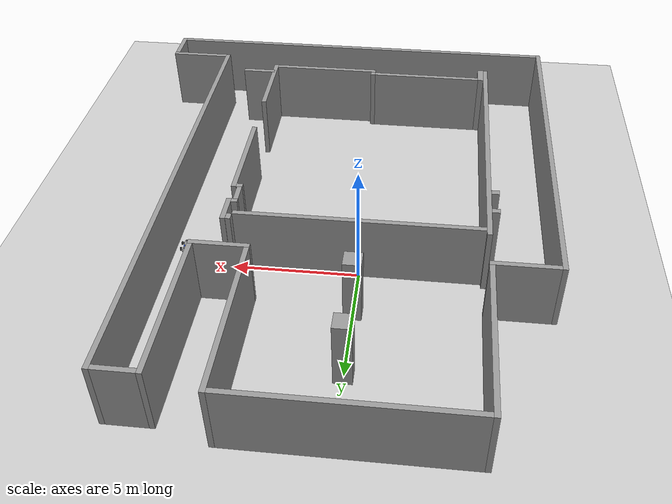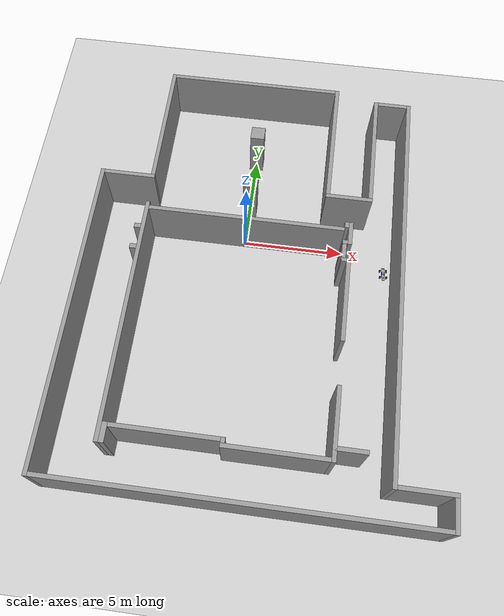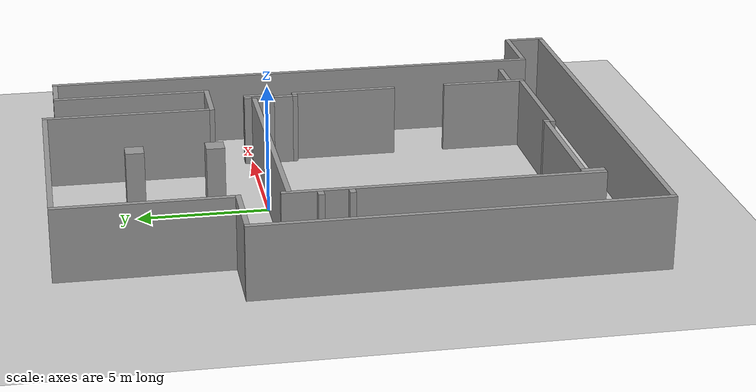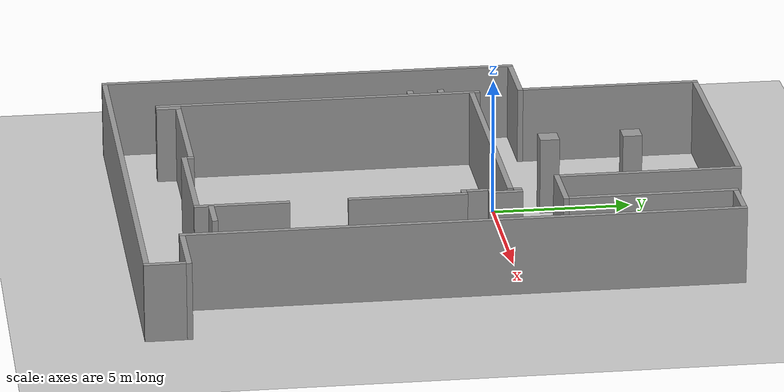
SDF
<sdf version="1.4">
 <world name="default">
  <model name="ground_plane">
   <static>1</static>
   <link name="link">
    <collision name="collision">
     <geometry><plane><normal>0 0 1</normal><size>100 100</size></plane></geometry>
     <surface><friction><ode><mu>100</mu><mu2>50</mu2></ode></friction></surface>
    </collision>
    <visual name="visual">
     <cast_shadows>0</cast_shadows>
     <geometry><plane><normal>0 0 1</normal><size>100 100</size></plane></geometry>
     <material>
      <script><uri>file://media/materials/scripts/gazebo.material</uri><name>Gazebo/Grey</name></script>
     </material>
    </visual>
    <velocity_decay><linear>0</linear><angular>0</angular></velocity_decay>
   </link>
  </model>
  <light name="sun" type="directional">
   <pose>0 0 10 0 -0 0</pose>
   <diffuse>0.8 0.8 0.8 1</diffuse>
   <specular>0.2 0.2 0.2 1</specular>
   <attenuation>
    <range>1000</range>
    <constant>0.9</constant>
    <linear>0.01</linear>
    <quadratic>0.001</quadratic>
   </attenuation>
   <direction>-0.5 0.1 -0.9</direction>
  </light>
  <model name="3rdFloor">
   <static>1</static>
   <link name="link1">
    <pose>0 -0.1 1.4 0 -0 0</pose>
    <collision name="collision"><geometry><box><size>9.65 0.2 2.8</size></box></geometry></collision>
    <visual name="visual">
     <cast_shadows>0</cast_shadows>
     <geometry><box><size>9.65 0.2 2.8</size></box></geometry>
     <material>
      <script>
       <uri>model://grey_wall/materials/scripts</uri>
       <uri>model://grey_wall/materials/textures</uri>
       <name>vrc/grey_wall</name>
      </script>
     </material>
    </visual>
    <velocity_decay><linear>0</linear><angular>0</angular></velocity_decay>
   </link>
   <link name="link2">
    <pose>4.923 0.15 1.4 0 -0 1.5708</pose>
    <collision name="collision"><geometry><box><size>0.3 0.2 2.8</size></box></geometry></collision>
    <visual name="visual">
     <cast_shadows>0</cast_shadows>
     <geometry><box><size>0.3 0.2 2.8</size></box></geometry>
     <material>
      <script>
       <uri>model://grey_wall/materials/scripts</uri>
       <uri>model://grey_wall/materials/textures</uri>
       <name>vrc/grey_wall</name>
      </script>
     </material>
    </visual>
    <velocity_decay><linear>0</linear><angular>0</angular></velocity_decay>
   </link>
   <link name="link4">
    <pose>5.125 -0.3 1.4 0 -0 1.5708</pose>
    <collision name="collision"><geometry><box><size>1.2 0.2 2.8</size></box></geometry></collision>
    <visual name="visual">
     <cast_shadows>0</cast_shadows>
     <geometry><box><size>1.2 0.2 2.8</size></box></geometry>
     <material>
      <script>
       <uri>model://grey_wall/materials/scripts</uri>
       <uri>model://grey_wall/materials/textures</uri>
       <name>vrc/grey_wall</name>
      </script>
     </material>
    </visual>
    <velocity_decay><linear>0</linear><angular>0</angular></velocity_decay>
   </link>
   <link name="link5">
    <pose>4.9 -0.8 1.4 0 -0 0</pose>
    <collision name="collision"><geometry><box><size>0.25 0.2 2.8</size></box></geometry></collision>
    <visual name="visual">
     <cast_shadows>0</cast_shadows>
     <geometry><box><size>0.25 0.2 2.8</size></box></geometry>
     <material>
      <script>
       <uri>model://grey_wall/materials/scripts</uri>
       <uri>model://grey_wall/materials/textures</uri>
       <name>vrc/grey_wall</name>
      </script>
     </material>
    </visual>
    <velocity_decay><linear>0</linear><angular>0</angular></velocity_decay>
   </link>
   <link name="link6">
    <pose>4.875 -1.275 1.4 0 -0 1.5708</pose>
    <collision name="collision"><geometry><box><size>0.75 0.2 2.8</size></box></geometry></collision>
    <visual name="visual">
     <cast_shadows>0</cast_shadows>
     <geometry><box><size>0.75 0.2 2.8</size></box></geometry>
     <material>
      <script>
       <uri>model://grey_wall/materials/scripts</uri>
       <uri>model://grey_wall/materials/textures</uri>
       <name>vrc/grey_wall</name>
      </script>
     </material>
    </visual>
    <velocity_decay><linear>0</linear><angular>0</angular></velocity_decay>
   </link>
   <link name="link7">
    <pose>4.9 -1.75 1.4 0 -0 0</pose>
    <collision name="collision"><geometry><box><size>0.25 0.2 2.8</size></box></geometry></collision>
    <visual name="visual">
     <cast_shadows>0</cast_shadows>
     <geometry><box><size>0.25 0.2 2.8</size></box></geometry>
     <material>
      <script>
       <uri>model://grey_wall/materials/scripts</uri>
       <uri>model://grey_wall/materials/textures</uri>
       <name>vrc/grey_wall</name>
      </script>
     </material>
    </visual>
    <velocity_decay><linear>0</linear><angular>0</angular></velocity_decay>
   </link>
   <link name="link8">
    <pose>5.125 -3.75 1.4 0 -0 1.5708</pose>
    <collision name="collision"><geometry><box><size>4.2 0.2 2.8</size></box></geometry></collision>
    <visual name="visual">
     <cast_shadows>0</cast_shadows>
     <geometry><box><size>4.2 0.2 2.8</size></box></geometry>
     <material>
      <script>
       <uri>model://grey_wall/materials/scripts</uri>
       <uri>model://grey_wall/materials/textures</uri>
       <name>vrc/grey_wall</name>
      </script>
     </material>
    </visual>
    <velocity_decay><linear>0</linear><angular>0</angular></velocity_decay>
   </link>
   <link name="link9">
    <pose>5.125 -9.575 1.4 0 -0 1.5708</pose>
    <collision name="collision"><geometry><box><size>3.35 0.2 2.8</size></box></geometry></collision>
    <visual name="visual">
     <cast_shadows>0</cast_shadows>
     <geometry><box><size>3.35 0.2 2.8</size></box></geometry>
     <material>
      <script>
       <uri>model://grey_wall/materials/scripts</uri>
       <uri>model://grey_wall/materials/textures</uri>
       <name>vrc/grey_wall</name>
      </script>
     </material>
    </visual>
    <velocity_decay><linear>0</linear><angular>0</angular></velocity_decay>
   </link>
   <link name="link9.1">
    <pose>5.85 -10.65 1.4 0 -0 0</pose>
    <collision name="collision"><geometry><box><size>1.25 0.2 2.8</size></box></geometry></collision>
    <visual name="visual">
     <cast_shadows>0</cast_shadows>
     <geometry><box><size>1.45 0.2 2.8</size></box></geometry>
     <material>
      <script>
       <uri>model://grey_wall/materials/scripts</uri>
       <uri>model://grey_wall/materials/textures</uri>
       <name>vrc/grey_wall</name>
      </script>
     </material>
    </visual>
    <velocity_decay><linear>0</linear><angular>0</angular></velocity_decay>
   </link>
   <link name="link10">
    <pose>2.675 -11.15 1.4 0 -0 0</pose>
    <collision name="collision"><geometry><box><size>4.7 0.2 2.8</size></box></geometry></collision>
    <visual name="visual">
     <cast_shadows>0</cast_shadows>
     <geometry><box><size>4.7 0.2 2.8</size></box></geometry>
     <material>
      <script>
       <uri>model://grey_wall/materials/scripts</uri>
       <uri>model://grey_wall/materials/textures</uri>
       <name>vrc/grey_wall</name>
      </script>
     </material>
    </visual>
    <velocity_decay><linear>0</linear><angular>0</angular></velocity_decay>
   </link>
   <link name="link11">
    <pose>0.425 -10.925 1.4 0 -0 1.5708</pose>
    <collision name="collision"><geometry><box><size>0.25 0.2 2.8</size></box></geometry></collision>
    <visual name="visual">
     <cast_shadows>0</cast_shadows>
     <geometry><box><size>0.25 0.2 2.8</size></box></geometry>
     <material>
      <script>
       <uri>model://grey_wall/materials/scripts</uri>
       <uri>model://grey_wall/materials/textures</uri>
       <name>vrc/grey_wall</name>
      </script>
     </material>
    </visual>
    <velocity_decay><linear>0</linear><angular>0</angular></velocity_decay>
   </link>
   <link name="link12">
    <pose>-2.1 -10.9 1.4 0 -0 0</pose>
    <collision name="collision"><geometry><box><size>4.85 0.2 2.8</size></box></geometry></collision>
    <visual name="visual">
     <cast_shadows>0</cast_shadows>
     <geometry><box><size>4.85 0.2 2.8</size></box></geometry>
     <material>
      <script>
       <uri>model://grey_wall/materials/scripts</uri>
       <uri>model://grey_wall/materials/textures</uri>
       <name>vrc/grey_wall</name>
      </script>
     </material>
    </visual>
    <velocity_decay><linear>0</linear><angular>0</angular></velocity_decay>
   </link>
   <link name="link13">
    <pose>-4.65 -11.25 1.4 0 -0 1.5708</pose>
    <collision name="collision"><geometry><box><size>0.9 0.25 2.8</size></box></geometry></collision>
    <visual name="visual">
     <cast_shadows>0</cast_shadows>
     <geometry><box><size>0.9 0.25 2.8</size></box></geometry>
     <material>
      <script>
       <uri>model://grey_wall/materials/scripts</uri>
       <uri>model://grey_wall/materials/textures</uri>
       <name>vrc/grey_wall</name>
      </script>
     </material>
    </visual>
    <velocity_decay><linear>0</linear><angular>0</angular></velocity_decay>
   </link>
   <link name="link14">
    <pose>-4.875 -5.75 1.4 0 -0 1.5708</pose>
    <collision name="collision"><geometry><box><size>11.9 0.2 2.8</size></box></geometry></collision>
    <visual name="visual">
     <cast_shadows>0</cast_shadows>
     <geometry><box><size>11.9 0.2 2.8</size></box></geometry>
     <material>
      <script>
       <uri>model://grey_wall/materials/scripts</uri>
       <uri>model://grey_wall/materials/textures</uri>
       <name>vrc/grey_wall</name>
      </script>
     </material>
    </visual>
    <velocity_decay><linear>0</linear><angular>0</angular></velocity_decay>
   </link>
   <link name="link141">
    <pose>-5.135 -1.2 1.4 0 -0 0</pose>
    <collision name="collision"><geometry><box><size>0.32 0.23 2.8</size></box></geometry></collision>
    <visual name="visual">
     <cast_shadows>0</cast_shadows>
     <geometry><box><size>0.32 0.23 2.8</size></box></geometry>
     <material>
      <script>
       <uri>model://grey_wall/materials/scripts</uri>
       <uri>model://grey_wall/materials/textures</uri>
       <name>vrc/grey_wall</name>
      </script>
     </material>
    </visual>
    <velocity_decay><linear>0</linear><angular>0</angular></velocity_decay>
   </link>
   <link name="link142">
    <pose>-5.135 -2.33 1.4 0 -0 0</pose>
    <collision name="collision"><geometry><box><size>0.32 0.23 2.8</size></box></geometry></collision>
    <visual name="visual">
     <cast_shadows>0</cast_shadows>
     <geometry><box><size>0.32 0.23 2.8</size></box></geometry>
     <material>
      <script>
       <uri>model://grey_wall/materials/scripts</uri>
       <uri>model://grey_wall/materials/textures</uri>
       <name>vrc/grey_wall</name>
      </script>
     </material>
    </visual>
    <velocity_decay><linear>0</linear><angular>0</angular></velocity_decay>
   </link>
   <link name="link15">
    <pose>1.375 -13.35 1.4 0 -0 0</pose>
    <collision name="collision"><geometry><box><size>17.5 0.2 2.8</size></box></geometry></collision>
    <visual name="visual">
     <cast_shadows>0</cast_shadows>
     <geometry><box><size>17.5 0.2 2.8</size></box></geometry>
     <material>
      <script>
       <uri>model://grey_wall/materials/scripts</uri>
       <uri>model://grey_wall/materials/textures</uri>
       <name>vrc/grey_wall</name>
      </script>
     </material>
    </visual>
    <velocity_decay><linear>0</linear><angular>0</angular></velocity_decay>
   </link>
   <link name="link16">
    <pose>-7.475 -5.825 1.4 0 -0 1.5708</pose>
    <collision name="collision"><geometry><box><size>15.25 0.2 2.8</size></box></geometry></collision>
    <visual name="visual">
     <cast_shadows>0</cast_shadows>
     <geometry><box><size>15.25 0.2 2.8</size></box></geometry>
     <material>
      <script>
       <uri>model://grey_wall/materials/scripts</uri>
       <uri>model://grey_wall/materials/textures</uri>
       <name>vrc/grey_wall</name>
      </script>
     </material>
    </visual>
    <velocity_decay><linear>0</linear><angular>0</angular></velocity_decay>
   </link>
   <link name="link17">
    <pose>-6.1 1.7 1.4 0 -0 0</pose>
    <collision name="collision"><geometry><box><size>2.55 0.2 2.8</size></box></geometry></collision>
    <visual name="visual">
     <cast_shadows>0</cast_shadows>
     <geometry><box><size>2.55 0.2 2.8</size></box></geometry>
     <material>
      <script>
       <uri>model://grey_wall/materials/scripts</uri>
       <uri>model://grey_wall/materials/textures</uri>
       <name>vrc/grey_wall</name>
      </script>
     </material>
    </visual>
    <velocity_decay><linear>0</linear><angular>0</angular></velocity_decay>
   </link>
   <link name="link18">
    <pose>-4.925 5.05 1.4 0 -0 1.5708</pose>
    <collision name="collision"><geometry><box><size>6.5 0.2 2.8</size></box></geometry></collision>
    <visual name="visual">
     <cast_shadows>0</cast_shadows>
     <geometry><box><size>6.5 0.2 2.8</size></box></geometry>
     <material>
      <script>
       <uri>model://grey_wall/materials/scripts</uri>
       <uri>model://grey_wall/materials/textures</uri>
       <name>vrc/grey_wall</name>
      </script>
     </material>
    </visual>
    <velocity_decay><linear>0</linear><angular>0</angular></velocity_decay>
   </link>
   <link name="link19">
    <pose>-0.525 8.2 1.4 0 -0 0</pose>
    <collision name="collision"><geometry><box><size>8.6 0.2 2.8</size></box></geometry></collision>
    <visual name="visual">
     <cast_shadows>0</cast_shadows>
     <geometry><box><size>8.6 0.2 2.8</size></box></geometry>
     <material>
      <script>
       <uri>model://grey_wall/materials/scripts</uri>
       <uri>model://grey_wall/materials/textures</uri>
       <name>vrc/grey_wall</name>
      </script>
     </material>
    </visual>
    <velocity_decay><linear>0</linear><angular>0</angular></velocity_decay>
   </link>
   <link name="link20">
    <pose>3.875 5.05 1.4 0 -0 1.5708</pose>
    <collision name="collision"><geometry><box><size>6.5 0.2 2.8</size></box></geometry></collision>
    <visual name="visual">
     <cast_shadows>0</cast_shadows>
     <geometry><box><size>6.5 0.2 2.8</size></box></geometry>
     <material>
      <script>
       <uri>model://grey_wall/materials/scripts</uri>
       <uri>model://grey_wall/materials/textures</uri>
       <name>vrc/grey_wall</name>
      </script>
     </material>
    </visual>
    <velocity_decay><linear>0</linear><angular>0</angular></velocity_decay>
   </link>
   <link name="link201">
    <pose>0 2 1.4 0 -0 0</pose>
    <collision name="collision"><geometry><box><size>0.7 0.7 2.8</size></box></geometry></collision>
    <visual name="visual">
     <cast_shadows>0</cast_shadows>
     <geometry><box><size>0.7 0.7 2.8</size></box></geometry>
     <material>
      <script>
       <uri>model://grey_wall/materials/scripts</uri>
       <uri>model://grey_wall/materials/textures</uri>
       <name>vrc/grey_wall</name>
      </script>
     </material>
    </visual>
    <velocity_decay><linear>0</linear><angular>0</angular></velocity_decay>
   </link>
   <link name="link202">
    <pose>0 5 1.4 0 -0 0</pose>
    <collision name="collision"><geometry><box><size>0.7 0.7 2.8</size></box></geometry></collision>
    <visual name="visual">
     <cast_shadows>0</cast_shadows>
     <geometry><box><size>0.7 0.7 2.8</size></box></geometry>
     <material>
      <script>
       <uri>model://grey_wall/materials/scripts</uri>
       <uri>model://grey_wall/materials/textures</uri>
       <name>vrc/grey_wall</name>
      </script>
     </material>
    </visual>
    <velocity_decay><linear>0</linear><angular>0</angular></velocity_decay>
   </link>
   <link name="link21">
    <pose>4.925 1.7 1.4 0 -0 0</pose>
    <collision name="collision"><geometry><box><size>2.3 0.2 2.8</size></box></geometry></collision>
    <visual name="visual">
     <cast_shadows>0</cast_shadows>
     <geometry><box><size>2.3 0.2 2.8</size></box></geometry>
     <material>
      <script>
       <uri>model://grey_wall/materials/scripts</uri>
       <uri>model://grey_wall/materials/textures</uri>
       <name>vrc/grey_wall</name>
      </script>
     </material>
    </visual>
    <velocity_decay><linear>0</linear><angular>0</angular></velocity_decay>
   </link>
   <link name="link22">
    <pose>5.975 4.8 1.4 0 -0 1.5708</pose>
    <collision name="collision"><geometry><box><size>6 0.2 2.8</size></box></geometry></collision>
    <visual name="visual">
     <cast_shadows>0</cast_shadows>
     <geometry><box><size>6 0.2 2.8</size></box></geometry>
     <material>
      <script>
       <uri>model://grey_wall/materials/scripts</uri>
       <uri>model://grey_wall/materials/textures</uri>
       <name>vrc/grey_wall</name>
      </script>
     </material>
    </visual>
    <velocity_decay><linear>0</linear><angular>0</angular></velocity_decay>
   </link>
   <link name="link23">
    <pose>6.825 7.7 1.4 0 -0 0</pose>
    <collision name="collision"><geometry><box><size>1.5 0.2 2.8</size></box></geometry></collision>
    <visual name="visual">
     <cast_shadows>0</cast_shadows>
     <geometry><box><size>1.5 0.2 2.8</size></box></geometry>
     <material>
      <script>
       <uri>model://grey_wall/materials/scripts</uri>
       <uri>model://grey_wall/materials/textures</uri>
       <name>vrc/grey_wall</name>
      </script>
     </material>
    </visual>
    <velocity_decay><linear>0</linear><angular>0</angular></velocity_decay>
   </link>
   <link name="link24">
    <pose>7.675 -2.1 1.4 0 -0 1.5708</pose>
    <collision name="collision"><geometry><box><size>19.8 0.2 2.8</size></box></geometry></collision>
    <visual name="visual">
     <cast_shadows>0</cast_shadows>
     <geometry><box><size>19.8 0.2 2.8</size></box></geometry>
     <material>
      <script>
       <uri>model://grey_wall/materials/scripts</uri>
       <uri>model://grey_wall/materials/textures</uri>
       <name>vrc/grey_wall</name>
      </script>
     </material>
    </visual>
    <velocity_decay><linear>0</linear><angular>0</angular></velocity_decay>
   </link>
   <link name="link25">
    <pose>9.05 -11.9 1.4 0 -0 0</pose>
    <collision name="collision"><geometry><box><size>2.55 0.2 2.8</size></box></geometry></collision>
    <visual name="visual">
     <cast_shadows>0</cast_shadows>
     <geometry><box><size>2.55 0.2 2.8</size></box></geometry>
     <material>
      <script>
       <uri>model://grey_wall/materials/scripts</uri>
       <uri>model://grey_wall/materials/textures</uri>
       <name>vrc/grey_wall</name>
      </script>
     </material>
    </visual>
    <velocity_decay><linear>0</linear><angular>0</angular></velocity_decay>
   </link>
   <link name="link24">
    <pose>10.225 -12.725 1.4 0 -0 1.5708</pose>
    <collision name="collision"><geometry><box><size>1.45 0.2 2.8</size></box></geometry></collision>
    <visual name="visual">
     <cast_shadows>0</cast_shadows>
     <geometry><box><size>1.45 0.2 2.8</size></box></geometry>
     <material>
      <script>
       <uri>model://grey_wall/materials/scripts</uri>
       <uri>model://grey_wall/materials/textures</uri>
       <name>vrc/grey_wall</name>
      </script>
     </material>
    </visual>
    <velocity_decay><linear>0</linear><angular>0</angular></velocity_decay>
   </link>
  </model>
  <physics type="ode">
   <max_step_size>0.001</max_step_size>
   <real_time_factor>1</real_time_factor>
   <real_time_update_rate>1000</real_time_update_rate>
   <gravity>0 0 -9.8</gravity>
  </physics>
  <scene><ambient>0.4 0.4 0.4 1</ambient><background>0.7 0.7 0.7 1</background><shadows>1</shadows></scene>
  <spherical_coordinates>
   <surface_model>EARTH_WGS84</surface_model>
   <latitude_deg>0</latitude_deg>
   <longitude_deg>0</longitude_deg>
   <elevation>0</elevation>
   <heading_deg>0</heading_deg>
  </spherical_coordinates>
  <model name="ackermann_vehicle">
   <link name="base_link">
    <inertial>
     <pose>-0.00663373 0 -0.00353556 0 -0 0</pose>
     <mass>3.795</mass>
     <inertia>
      <ixx>0.0115307</ixx>
      <ixy>0</ixy>
      <ixz>0.000102071</ixz>
      <iyy>0.112147</iyy>
      <iyz>0</iyz>
      <izz>0.121458</izz>
     </inertia>
    </inertial>
    <collision name="base_link_collision_chassis">
     <pose>0 0 -0.005 0 -0 0</pose>
     <geometry><box><size>0.68 0.16 0.01</size></box></geometry>
    </collision>
    <collision name="base_link_collision_hokuyo_back_link">
     <pose>-0.2475 0 0.12 0 -0 3.14159</pose>
     <geometry><box><size>0.05 0.05 0.06</size></box></geometry>
    </collision>
    <collision name="base_link_collision_hokuyo_front_link">
     <pose>0.2425 0 0.07 0 -0 0</pose>
     <geometry><box><size>0.05 0.05 0.06</size></box></geometry>
    </collision>
    <collision name="base_link_collision_left_battery">
     <pose>-0.025 0.0573189 0.000519932 0.349066 -0 0</pose>
     <geometry><box><size>0.16 0.047 0.024</size></box></geometry>
    </collision>
    <collision name="base_link_collision_right_battery">
     <pose>-0.025 -0.0573189 0.000519932 -0.349066 0 0</pose>
     <geometry><box><size>0.16 0.047 0.024</size></box></geometry>
    </collision>
    <visual name="base_link_visual">
     <geometry><box><size>0.01 0.01 0.01</size></box></geometry>
     <material><script><name>Gazebo/Grey</name><uri>__default__</uri></script></material>
    </visual>
    <visual name="base_link_visual_chassis">
     <pose>0 0 -0.005 0 -0 0</pose>
     <geometry><box><size>0.68 0.16 0.01</size></box></geometry>
     <material><script><name>Gazebo/Grey</name><uri>__default__</uri></script></material>
    </visual>
    <visual name="base_link_visual_hokuyo_back_link">
     <pose>-0.2475 0 0.12 0 -0 3.14159</pose>
     <geometry><box><size>0.05 0.05 0.06</size></box></geometry>
    </visual>
    <visual name="base_link_visual_hokuyo_front_link">
     <pose>0.2425 0 0.07 0 -0 0</pose>
     <geometry><box><size>0.05 0.05 0.06</size></box></geometry>
    </visual>
    <visual name="base_link_visual_left_battery">
     <pose>-0.025 0.0573189 0.000519932 0.349066 -0 0</pose>
     <geometry><box><size>0.16 0.047 0.024</size></box></geometry>
     <material><script><name>Gazebo/Blue</name><uri>__default__</uri></script></material>
    </visual>
    <visual name="base_link_visual_right_battery">
     <pose>-0.025 -0.0573189 0.000519932 -0.349066 0 0</pose>
     <geometry><box><size>0.16 0.047 0.024</size></box></geometry>
     <material><script><name>Gazebo/Blue</name><uri>__default__</uri></script></material>
    </visual>
    <velocity_decay><linear>0</linear><angular>0</angular></velocity_decay>
    <velocity_decay><linear>0</linear><angular>0</angular></velocity_decay>
    <velocity_decay><linear>0</linear><angular>0</angular></velocity_decay>
    <velocity_decay><linear>0</linear><angular>0</angular></velocity_decay>
    <velocity_decay><linear>0</linear><angular>0</angular></velocity_decay>
    <sensor name="back_hokuyo_sensor" type="ray">
     <visualize>1</visualize>
     <update_rate>10</update_rate>
     <ray>
      <scan>
       <horizontal>
        <samples>456</samples>
        <resolution>1</resolution>
        <min_angle>-1.4</min_angle>
        <max_angle>1.4</max_angle>
       </horizontal>
      </scan>
      <range><min>0.1</min><max>4</max><resolution>0.01</resolution></range>
      <noise><type>gaussian</type><mean>0</mean><stddev>0.01</stddev></noise>
     </ray>
     <plugin name="gazebo_ros_back_hokuyo_controller" filename="libgazebo_ros_laser.so">
      <topicName>/scan_back</topicName>
      <frameName>/hokuyo_back_link</frameName>
      <robotNamespace>/ackermann_vehicle/</robotNamespace>
     </plugin>
     <pose>-0.2475 0 0.12 0 -0 3.14159</pose>
    </sensor>
    <velocity_decay><linear>0</linear><angular>0</angular></velocity_decay>
    <sensor name="head_hokuyo_sensor" type="ray">
     <visualize>1</visualize>
     <update_rate>40</update_rate>
     <ray>
      <scan>
       <horizontal>
        <samples>642</samples>
        <resolution>1</resolution>
        <min_angle>-1.4</min_angle>
        <max_angle>1.4</max_angle>
       </horizontal>
      </scan>
      <range><min>0.1</min><max>30</max><resolution>0.01</resolution></range>
      <noise><type>gaussian</type><mean>0</mean><stddev>0.01</stddev></noise>
     </ray>
     <plugin name="gazebo_ros_head_hokuyo_controller" filename="libgazebo_ros_laser.so">
      <topicName>/scan</topicName>
      <frameName>/hokuyo_front_link</frameName>
      <robotNamespace>/ackermann_vehicle/</robotNamespace>
     </plugin>
     <pose>0.2425 0 0.07 0 -0 0</pose>
    </sensor>
   </link>
   <link name="left_steering_link">
    <pose>0.178 0.1625 -0.0235 0 -0 0</pose>
    <inertial>
     <mass>0.001</mass>
     <inertia><ixx>0.001</ixx><ixy>0</ixy><ixz>0</ixz><iyy>0.001</iyy><iyz>0</iyz><izz>0.001</izz></inertia>
    </inertial>
    <velocity_decay><linear>0</linear><angular>0</angular></velocity_decay>
   </link>
   <joint name="left_front_shock" type="prismatic">
    <child>left_steering_link</child>
    <parent>base_link</parent>
    <axis>
     <xyz>0 0 -1</xyz>
     <limit><lower>-0.042</lower><upper>0.042</upper><effort>12.5106</effort><velocity>1000</velocity></limit>
    </axis>
   </joint>
   <link name="left_front_axle_carrier">
    <pose>0.178 0.1625 -0.0235 0 -0 0</pose>
    <inertial>
     <mass>0.001</mass>
     <inertia><ixx>0.001</ixx><ixy>0</ixy><ixz>0</ixz><iyy>0.001</iyy><iyz>0</iyz><izz>0.001</izz></inertia>
    </inertial>
    <velocity_decay><linear>0</linear><angular>0</angular></velocity_decay>
   </link>
   <joint name="left_steering_joint" type="revolute">
    <child>left_front_axle_carrier</child>
    <parent>left_steering_link</parent>
    <axis>
     <xyz>0 0 1</xyz>
     <limit>
      <lower>-0.785398</lower>
      <upper>0.785398</upper>
      <effort>0.5649</effort>
      <velocity>4.553</velocity>
     </limit>
    </axis>
   </joint>
   <link name="left_front_wheel">
    <pose>0.178 0.1625 -0.0235 1.5708 -0 0</pose>
    <inertial>
     <mass>0.29</mass>
     <inertia>
      <ixx>0.000620745</ixx>
      <ixy>0</ixy>
      <ixz>0</ixz>
      <iyy>0.000620745</iyy>
      <iyz>0</iyz>
      <izz>0.00106749</izz>
     </inertia>
    </inertial>
    <collision name="left_front_wheel_collision">
     <geometry><cylinder><length>0.06</length><radius>0.069</radius></cylinder></geometry>
    </collision>
    <visual name="left_front_wheel_visual">
     <geometry><cylinder><length>0.06</length><radius>0.069</radius></cylinder></geometry>
     <material><script><name>Gazebo/Black</name><uri>__default__</uri></script></material>
    </visual>
    <velocity_decay><linear>0</linear><angular>0</angular></velocity_decay>
   </link>
   <joint name="left_front_axle" type="revolute">
    <child>left_front_wheel</child>
    <parent>left_front_axle_carrier</parent>
    <axis><xyz>0 1 0</xyz><limit><lower>-1e+16</lower><upper>1e+16</upper></limit></axis>
   </joint>
   <link name="left_rear_axle_carrier">
    <pose>-0.178 0.1625 -0.0235 0 -0 0</pose>
    <inertial>
     <mass>0.001</mass>
     <inertia><ixx>0.001</ixx><ixy>0</ixy><ixz>0</ixz><iyy>0.001</iyy><iyz>0</iyz><izz>0.001</izz></inertia>
    </inertial>
    <velocity_decay><linear>0</linear><angular>0</angular></velocity_decay>
   </link>
   <joint name="left_rear_shock" type="prismatic">
    <child>left_rear_axle_carrier</child>
    <parent>base_link</parent>
    <axis>
     <xyz>0 0 -1</xyz>
     <limit><lower>-0.042</lower><upper>0.042</upper><effort>12.5106</effort><velocity>1000</velocity></limit>
    </axis>
   </joint>
   <link name="left_rear_wheel">
    <pose>-0.178 0.1625 -0.0235 1.5708 -0 0</pose>
    <inertial>
     <mass>0.29</mass>
     <inertia>
      <ixx>0.000620745</ixx>
      <ixy>0</ixy>
      <ixz>0</ixz>
      <iyy>0.000620745</iyy>
      <iyz>0</iyz>
      <izz>0.00106749</izz>
     </inertia>
    </inertial>
    <collision name="left_rear_wheel_collision">
     <geometry><cylinder><length>0.06</length><radius>0.069</radius></cylinder></geometry>
    </collision>
    <visual name="left_rear_wheel_visual">
     <geometry><cylinder><length>0.06</length><radius>0.069</radius></cylinder></geometry>
     <material><script><name>Gazebo/Black</name><uri>__default__</uri></script></material>
    </visual>
    <velocity_decay><linear>0</linear><angular>0</angular></velocity_decay>
   </link>
   <joint name="left_rear_axle" type="revolute">
    <child>left_rear_wheel</child>
    <parent>left_rear_axle_carrier</parent>
    <axis><xyz>0 1 0</xyz><limit><lower>-1e+16</lower><upper>1e+16</upper></limit></axis>
   </joint>
   <link name="right_steering_link">
    <pose>0.178 -0.1625 -0.0235 0 -0 0</pose>
    <inertial>
     <mass>0.001</mass>
     <inertia><ixx>0.001</ixx><ixy>0</ixy><ixz>0</ixz><iyy>0.001</iyy><iyz>0</iyz><izz>0.001</izz></inertia>
    </inertial>
    <velocity_decay><linear>0</linear><angular>0</angular></velocity_decay>
   </link>
   <joint name="right_front_shock" type="prismatic">
    <child>right_steering_link</child>
    <parent>base_link</parent>
    <axis>
     <xyz>0 0 -1</xyz>
     <limit><lower>-0.042</lower><upper>0.042</upper><effort>12.5106</effort><velocity>1000</velocity></limit>
    </axis>
   </joint>
   <link name="right_front_axle_carrier">
    <pose>0.178 -0.1625 -0.0235 0 -0 0</pose>
    <inertial>
     <mass>0.001</mass>
     <inertia><ixx>0.001</ixx><ixy>0</ixy><ixz>0</ixz><iyy>0.001</iyy><iyz>0</iyz><izz>0.001</izz></inertia>
    </inertial>
    <velocity_decay><linear>0</linear><angular>0</angular></velocity_decay>
   </link>
   <joint name="right_steering_joint" type="revolute">
    <child>right_front_axle_carrier</child>
    <parent>right_steering_link</parent>
    <axis>
     <xyz>0 0 1</xyz>
     <limit>
      <lower>-0.785398</lower>
      <upper>0.785398</upper>
      <effort>0.5649</effort>
      <velocity>4.553</velocity>
     </limit>
    </axis>
   </joint>
   <link name="right_front_wheel">
    <pose>0.178 -0.1625 -0.0235 1.5708 -0 0</pose>
    <inertial>
     <mass>0.29</mass>
     <inertia>
      <ixx>0.000620745</ixx>
      <ixy>0</ixy>
      <ixz>0</ixz>
      <iyy>0.000620745</iyy>
      <iyz>0</iyz>
      <izz>0.00106749</izz>
     </inertia>
    </inertial>
    <collision name="right_front_wheel_collision">
     <geometry><cylinder><length>0.06</length><radius>0.069</radius></cylinder></geometry>
    </collision>
    <visual name="right_front_wheel_visual">
     <geometry><cylinder><length>0.06</length><radius>0.069</radius></cylinder></geometry>
     <material><script><name>Gazebo/Black</name><uri>__default__</uri></script></material>
    </visual>
    <velocity_decay><linear>0</linear><angular>0</angular></velocity_decay>
   </link>
   <joint name="right_front_axle" type="revolute">
    <child>right_front_wheel</child>
    <parent>right_front_axle_carrier</parent>
    <axis><xyz>0 1 0</xyz><limit><lower>-1e+16</lower><upper>1e+16</upper></limit></axis>
   </joint>
   <link name="right_rear_axle_carrier">
    <pose>-0.178 -0.1625 -0.0235 0 -0 0</pose>
    <inertial>
     <mass>0.001</mass>
     <inertia><ixx>0.001</ixx><ixy>0</ixy><ixz>0</ixz><iyy>0.001</iyy><iyz>0</iyz><izz>0.001</izz></inertia>
    </inertial>
    <velocity_decay><linear>0</linear><angular>0</angular></velocity_decay>
   </link>
   <joint name="right_rear_shock" type="prismatic">
    <child>right_rear_axle_carrier</child>
    <parent>base_link</parent>
    <axis>
     <xyz>0 0 -1</xyz>
     <limit><lower>-0.042</lower><upper>0.042</upper><effort>12.5106</effort><velocity>1000</velocity></limit>
    </axis>
   </joint>
   <link name="right_rear_wheel">
    <pose>-0.178 -0.1625 -0.0235 1.5708 -0 0</pose>
    <inertial>
     <mass>0.29</mass>
     <inertia>
      <ixx>0.000620745</ixx>
      <ixy>0</ixy>
      <ixz>0</ixz>
      <iyy>0.000620745</iyy>
      <iyz>0</iyz>
      <izz>0.00106749</izz>
     </inertia>
    </inertial>
    <collision name="right_rear_wheel_collision">
     <geometry><cylinder><length>0.06</length><radius>0.069</radius></cylinder></geometry>
    </collision>
    <visual name="right_rear_wheel_visual">
     <geometry><cylinder><length>0.06</length><radius>0.069</radius></cylinder></geometry>
     <material><script><name>Gazebo/Black</name><uri>__default__</uri></script></material>
    </visual>
    <velocity_decay><linear>0</linear><angular>0</angular></velocity_decay>
   </link>
   <joint name="right_rear_axle" type="revolute">
    <child>right_rear_wheel</child>
    <parent>right_rear_axle_carrier</parent>
    <axis><xyz>0 1 0</xyz><limit><lower>-1e+16</lower><upper>1e+16</upper></limit></axis>
   </joint>
   <plugin name="gazebo_ros_control" filename="libgazebo_ros_control.so">
    <robotNamespace>/ackermann_vehicle/</robotNamespace>
   </plugin>
   <plugin name="quadrotor_imu_sim" filename="libhector_gazebo_ros_imu.so">
    <updateRate>100.0</updateRate>
    <topicName>/imu</topicName>
    <accelDrift>0.5 0.5 0.5</accelDrift>
    <accelGaussianNoise>0.35 0.35 0.3</accelGaussianNoise>
    <rateDrift>0.1 0.1 0.1</rateDrift>
    <rateGaussianNoise>0.05 0.05 0.015</rateGaussianNoise>
    <headingDrift>0.1</headingDrift>
    <headingGaussianNoise>0.05</headingGaussianNoise>
    <robotNamespace>/ackermann_vehicle/</robotNamespace>
    <bodyName>base_link</bodyName>
    <xyzOffset>0 0 0</xyzOffset>
    <rpyOffset>0 -0 0</rpyOffset>
   </plugin>
   <static>0</static>
   <plugin name="quadrotor_magnetic_sim" filename="libhector_gazebo_ros_magnetic.so">
    <updateRate>100</updateRate>
    <robotNamespace>ackermann_vehicle</robotNamespace>
    <topicName>/magnetic</topicName>
    <magnitude>1.0</magnitude>
    <referenceHeading>0.0</referenceHeading>
    <declination>0.0</declination>
    <inclination>60.0</inclination>
    <offset>0 0 0</offset>
    <drift>0.05 0.05 0.015</drift>
    <driftFrequency>0.1 0.1 0.1</driftFrequency>
    <gaussianNoise>0.05 0.05 0.015</gaussianNoise>
    <bodyName>base_link</bodyName>
    <xyzOffset>0 0 0</xyzOffset>
    <rpyOffset>0 -0 0</rpyOffset>
   </plugin>
   <pose>7.20468 -0.926392 0.102651 6e-06 -0.010267 -1.51097</pose>
  </model>
 </world>
</sdf>
